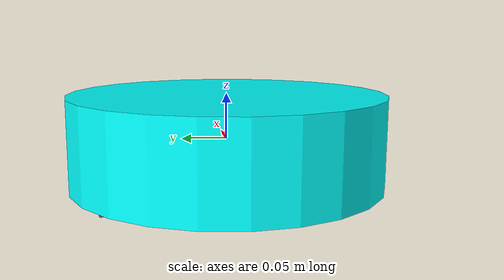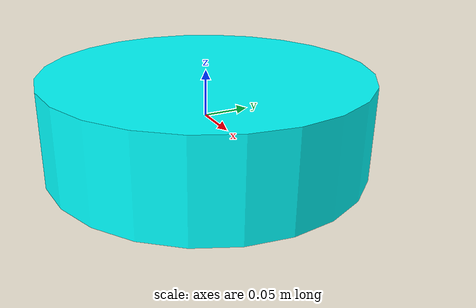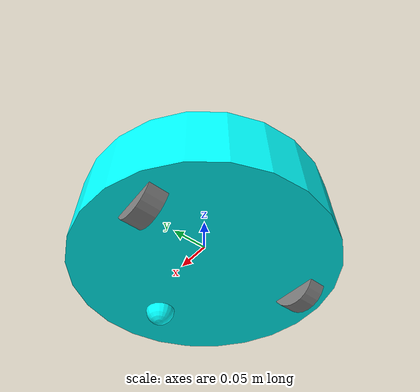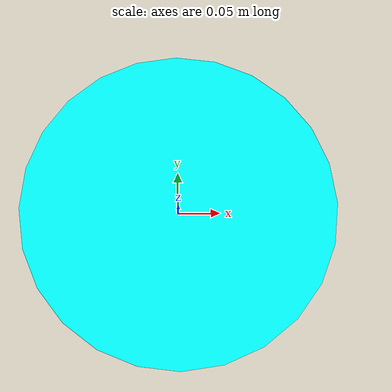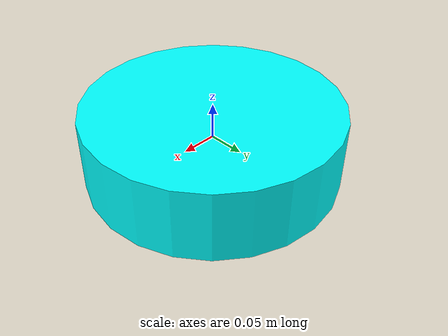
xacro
<?xml version="1.0"?>
<robot name="vacuum_cleaner" xmlns:xacro="http://www.ros.org/wiki/xacro">
    <xacro:property name="base_raduis"  value="0.175"/>
    <xacro:property name="base_height"  value="0.100"/>
    <xacro:property name="wheel_radius" value="0.035"/>
    <xacro:property name="wheel_width"  value="0.025"/>
    <xacro:property name="wheelbase"    value="0.250"/>
    <xacro:property name="wheel_xoff"   value="-0.050"/>
    <xacro:property name="caster_xoff"  value="0.100"/>
    <xacro:property name="floor_gap"    value="0.020"/>

    <xacro:include filename="robot_core.xacro"/>
</robot>

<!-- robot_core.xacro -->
<robot xmlns:xacro="http://www.ros.org/wiki/xacro">

<link name="base_link">
    <visual>
        <geometry>
            <cylinder radius="${base_raduis}" length="${base_height}"/>
        </geometry>
        <material name="Cyan">
            <color rgba="0 1.0 1.0 1.0"/>
        </material>
    </visual>
</link>

<link name="base_footprint"/>

<joint name="base_joint" type="fixed">
  <parent link="base_link"/>
  <child link="base_footprint"/>
  <origin xyz="0.0 0.0 ${-base_height/2 - floor_gap}" rpy="0 0 0"/>
</joint>

<xacro:macro name="wheel" params="prefix y_reflect">
  <link name="${prefix}_link">
    <visual>
      <origin xyz="0 0 0" rpy="${pi/2} 0 0"/>
      <geometry>
        <cylinder radius="${wheel_radius}" length="${wheel_width}"/>
      </geometry>
      <material name="Gray">
        <color rgba="0.5 0.5 0.5 1.0"/>
      </material>
    </visual>
  </link>

  <joint name="${prefix}_joint" type="continuous">
    <parent link="base_link"/>
    <child link="${prefix}_link"/>
    <origin xyz="${wheel_xoff} ${y_reflect*(wheelbase/2)} ${wheel_radius - base_height/2 - floor_gap}" rpy="0 0 0"/>
    <axis xyz="0 1 0"/>
  </joint>
</xacro:macro>

<xacro:wheel prefix="drive_wheel_l" y_reflect="1" />
<xacro:wheel prefix="drive_wheel_r" y_reflect="-1" />

<link name="caster_link">
  <visual>
    <geometry>
      <sphere radius="${floor_gap}"/>
    </geometry>
    <material name="Cyan">
      <color rgba="0 1.0 1.0 1.0"/>
    </material>
  </visual>
</link>

<joint name="caster_joint" type="fixed">
  <parent link="base_link"/>
  <child link="caster_link"/>
  <origin xyz="${caster_xoff} 0.0 ${-(base_height/2)}" rpy="0 0 0"/>
</joint>

</robot>
